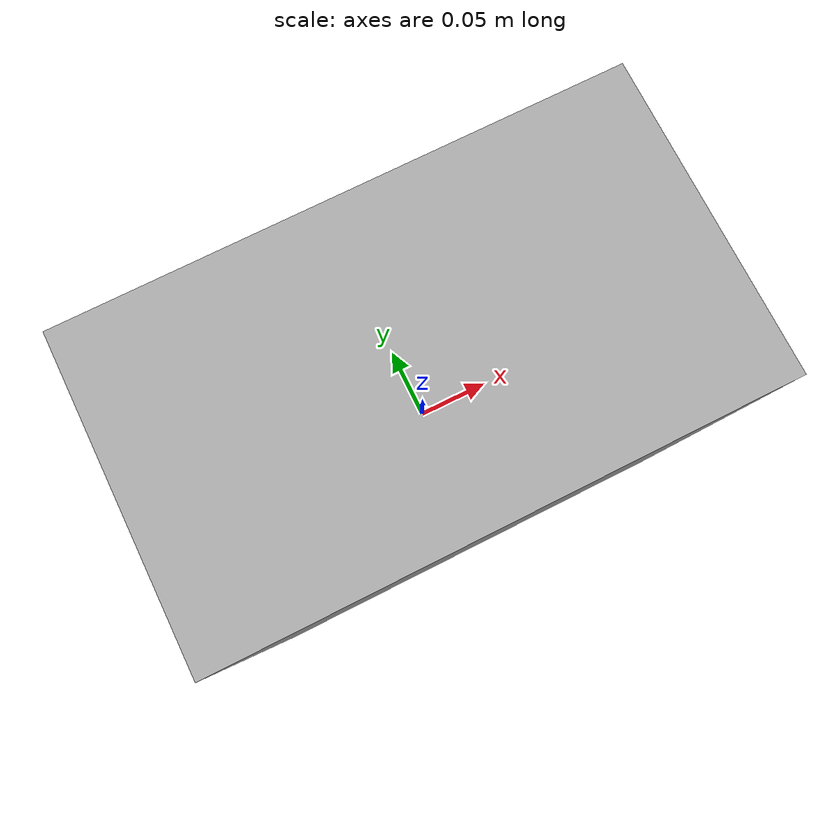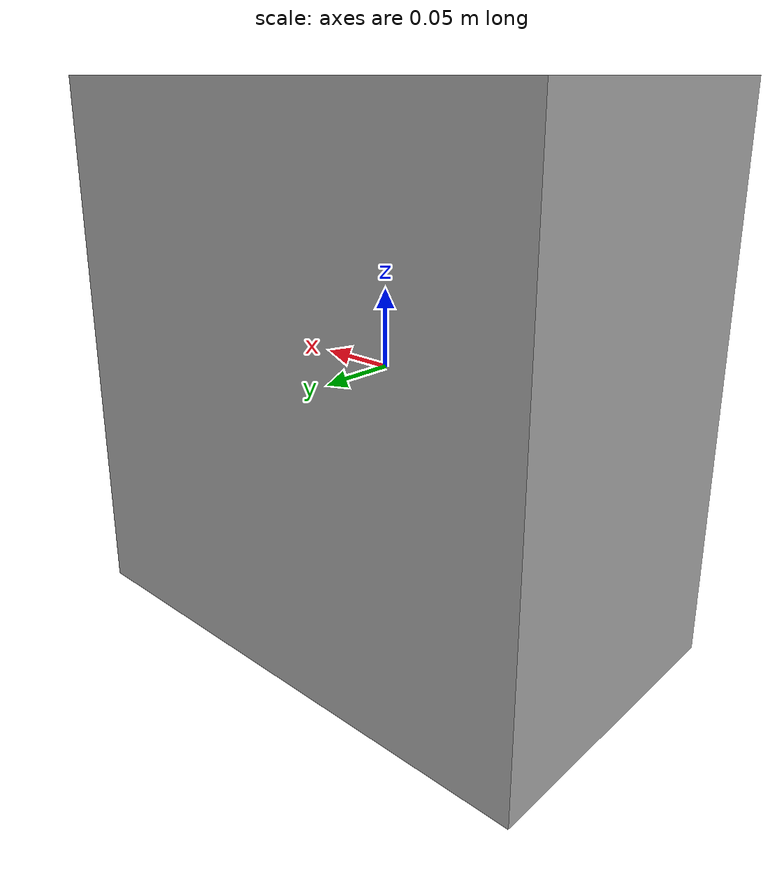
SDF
<?xml version="1.0"?>
<sdf version="1.6">
  <model name="tri_obstacle">
    <static>false</static>
    <link name="link">
      <collision name="collision">
        <geometry>
          <box>
            <size>0.35 0.20 0.35</size>
          </box>
        </geometry>
      </collision>
      <visual name="visual">
        <geometry>
          <box>
            <size>0.35 0.20 0.35</size>
          </box>
        </geometry>
        <material>
          <ambient>0.65 0.65 0.65 1</ambient>
          <diffuse>0.65 0.65 0.65 1</diffuse>
        </material>
      </visual>
    </link>
  </model>
</sdf>
